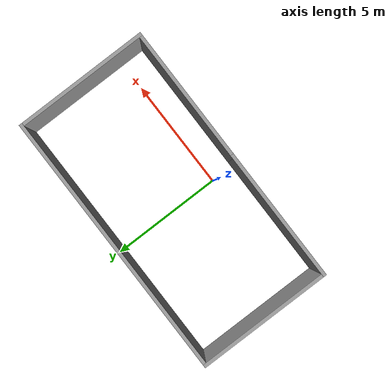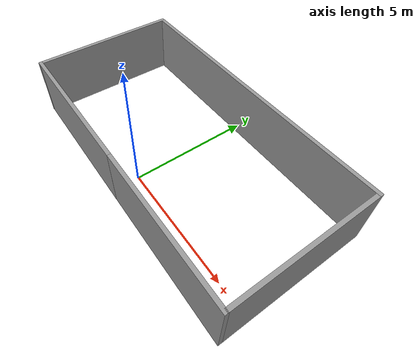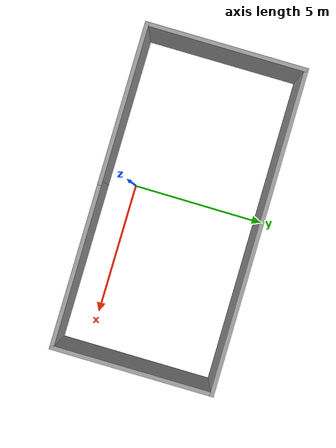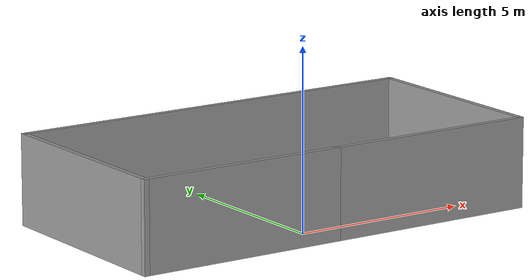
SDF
<?xml version='1.0'?>
<sdf version='1.7'>
  <model name='big_room'>
    <pose>0.395 1.855 0 0 -0 0</pose>
    <link name='Wall_0'>
      <collision name='Wall_0_Collision'>
        <geometry>
          <box>
            <size>6 0.15 2.5</size>
          </box>
        </geometry>
        <pose>0 0 1.25 0 -0 0</pose>
      </collision>
      <visual name='Wall_0_Visual'>
        <pose>0 0 1.25 0 -0 0</pose>
        <geometry>
          <box>
            <size>6 0.15 2.5</size>
          </box>
        </geometry>
        <material>
          <script>
            <uri>file://media/materials/scripts/gazebo.material</uri>
            <name>Gazebo/Grey</name>
          </script>
          <ambient>1 1 1 1</ambient>
        </material>
        <meta>
          <layer>0</layer>
        </meta>
      </visual>
      <pose>-3 -2.925 0 0 -0 3.14159</pose>
    </link>
    <link name='Wall_1'>
      <collision name='Wall_1_Collision'>
        <geometry>
          <box>
            <size>6 0.15 2.5</size>
          </box>
        </geometry>
        <pose>0 0 1.25 0 -0 0</pose>
      </collision>
      <visual name='Wall_1_Visual'>
        <pose>0 0 1.25 0 -0 0</pose>
        <geometry>
          <box>
            <size>6 0.15 2.5</size>
          </box>
        </geometry>
        <material>
          <script>
            <uri>file://media/materials/scripts/gazebo.material</uri>
            <name>Gazebo/Grey</name>
          </script>
          <ambient>1 1 1 1</ambient>
        </material>
        <meta>
          <layer>0</layer>
        </meta>
      </visual>
      <pose>-5.925 0 0 0 -0 1.5708</pose>
    </link>
    <link name='Wall_2'>
      <collision name='Wall_2_Collision'>
        <geometry>
          <box>
            <size>12 0.15 2.5</size>
          </box>
        </geometry>
        <pose>0 0 1.25 0 -0 0</pose>
      </collision>
      <visual name='Wall_2_Visual'>
        <pose>0 0 1.25 0 -0 0</pose>
        <geometry>
          <box>
            <size>12 0.15 2.5</size>
          </box>
        </geometry>
        <material>
          <script>
            <uri>file://media/materials/scripts/gazebo.material</uri>
            <name>Gazebo/Grey</name>
          </script>
          <ambient>1 1 1 1</ambient>
        </material>
        <meta>
          <layer>0</layer>
        </meta>
      </visual>
      <pose>0 2.925 0 0 -0 0</pose>
    </link>
    <link name='Wall_3'>
      <collision name='Wall_3_Collision'>
        <geometry>
          <box>
            <size>6 0.15 2.5</size>
          </box>
        </geometry>
        <pose>0 0 1.25 0 -0 0</pose>
      </collision>
      <visual name='Wall_3_Visual'>
        <pose>0 0 1.25 0 -0 0</pose>
        <geometry>
          <box>
            <size>6 0.15 2.5</size>
          </box>
        </geometry>
        <material>
          <script>
            <uri>file://media/materials/scripts/gazebo.material</uri>
            <name>Gazebo/Grey</name>
          </script>
          <ambient>1 1 1 1</ambient>
        </material>
        <meta>
          <layer>0</layer>
        </meta>
      </visual>
      <pose>5.925 0 0 0 -0 -1.5708</pose>
    </link>
    <link name='Wall_4'>
      <collision name='Wall_4_Collision'>
        <geometry>
          <box>
            <size>6.15 0.15 2.5</size>
          </box>
        </geometry>
        <pose>0 0 1.25 0 -0 0</pose>
      </collision>
      <visual name='Wall_4_Visual'>
        <pose>0 0 1.25 0 -0 0</pose>
        <geometry>
          <box>
            <size>6.15 0.15 2.5</size>
          </box>
        </geometry>
        <material>
          <script>
            <uri>file://media/materials/scripts/gazebo.material</uri>
            <name>Gazebo/Grey</name>
          </script>
          <ambient>1 1 1 1</ambient>
        </material>
        <meta>
          <layer>0</layer>
        </meta>
      </visual>
      <pose>2.925 -2.925 0 0 -0 3.14159</pose>
    </link>
    <static>1</static>
  </model>
</sdf>
